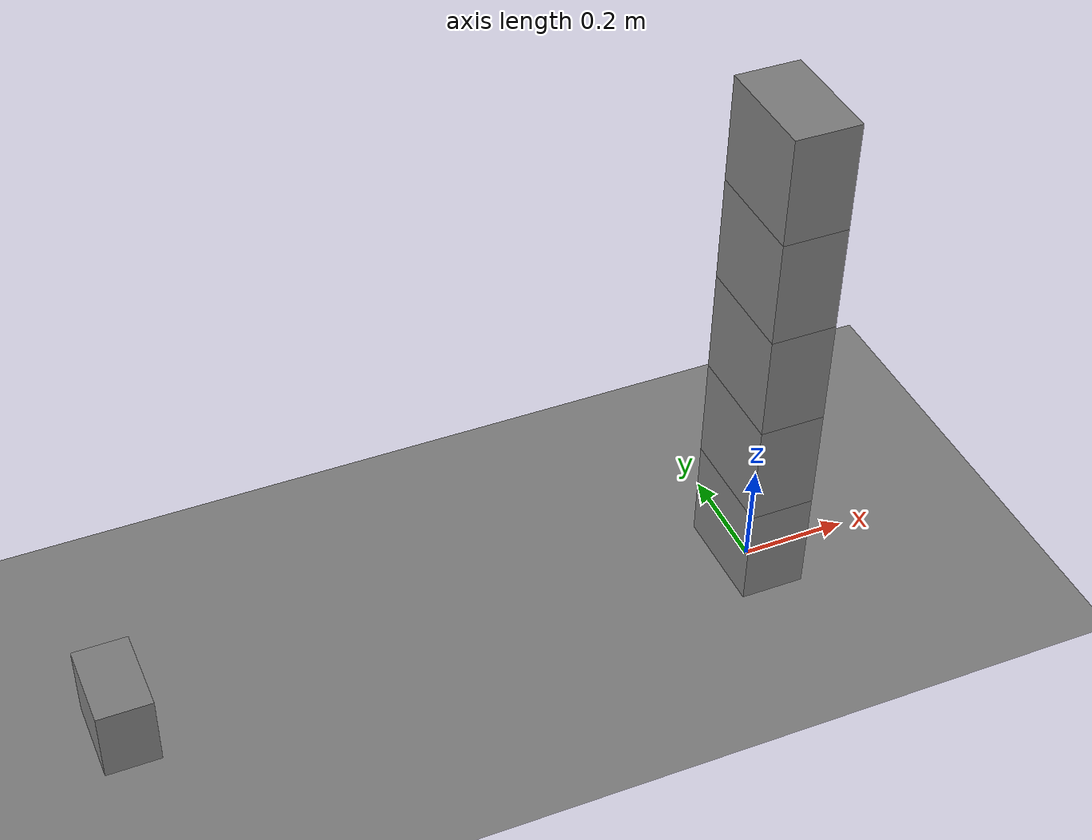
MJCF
<mujoco model="stack_topple">
  <option timestep="0.002"/>
  <worldbody>
    <geom name="floor" type="plane" size="6 6 0.1" friction="0.8 0.005 0.0001"/>
    <body name="block1" pos="0 0 0.100">
      <freejoint/>
      <geom name="block1" type="box" size="0.06 0.1 0.1" mass="0.5" friction="0.8 0.005 0.0001"/>
    </body>
    <body name="block2" pos="0 0 0.300">
      <freejoint/>
      <geom name="block2" type="box" size="0.06 0.1 0.1" mass="0.5" friction="0.8 0.005 0.0001"/>
    </body>
    <body name="block3" pos="0 0 0.500">
      <freejoint/>
      <geom name="block3" type="box" size="0.06 0.1 0.1" mass="0.5" friction="0.8 0.005 0.0001"/>
    </body>
    <body name="block4" pos="0 0 0.700">
      <freejoint/>
      <geom name="block4" type="box" size="0.06 0.1 0.1" mass="0.5" friction="0.8 0.005 0.0001"/>
    </body>
    <body name="block5" pos="0 0 0.900">
      <freejoint/>
      <geom name="block5" type="box" size="0.06 0.1 0.1" mass="0.5" friction="0.8 0.005 0.0001"/>
    </body>
    <body name="pusher" pos="-1.2 0 0.100">
      <joint name="pusher_slide" type="slide" axis="1 0 0" limited="true" range="0 1.7" damping="10"/>
      <geom name="pusher" type="box" size="0.05 0.08 0.07" mass="3" friction="0.3 0.005 0.0001"/>
    </body>
  </worldbody>
  <actuator>
    <velocity name="pusher_drive" joint="pusher_slide" kv="300" forcelimited="true" forcerange="-200 200"/>
  </actuator>
  <keyframe>
    <key name="start" ctrl="1.5"/>
  </keyframe>
</mujoco>
